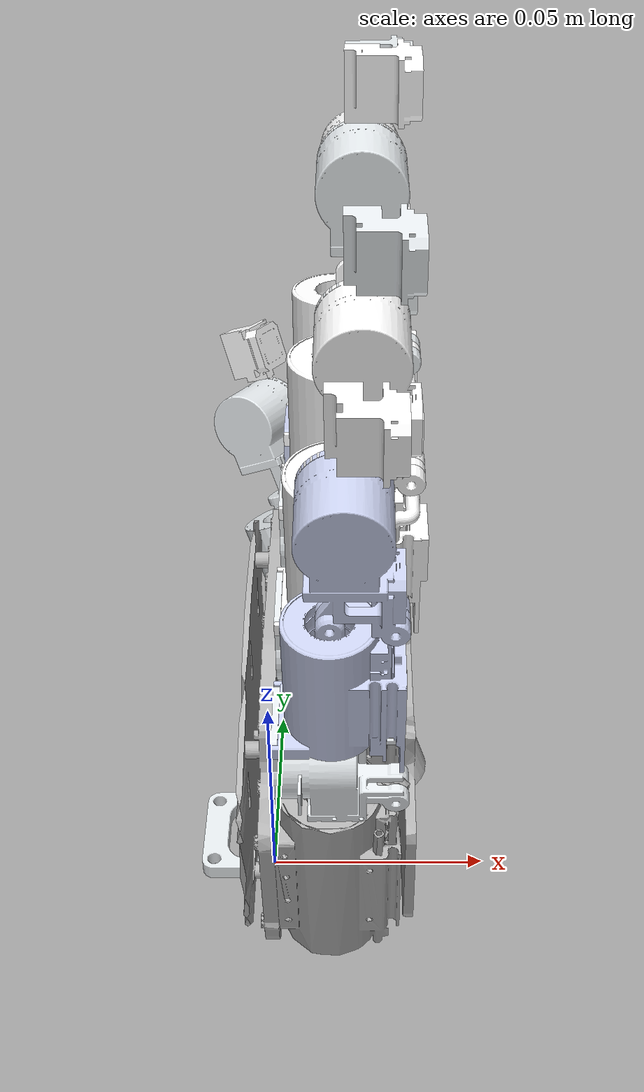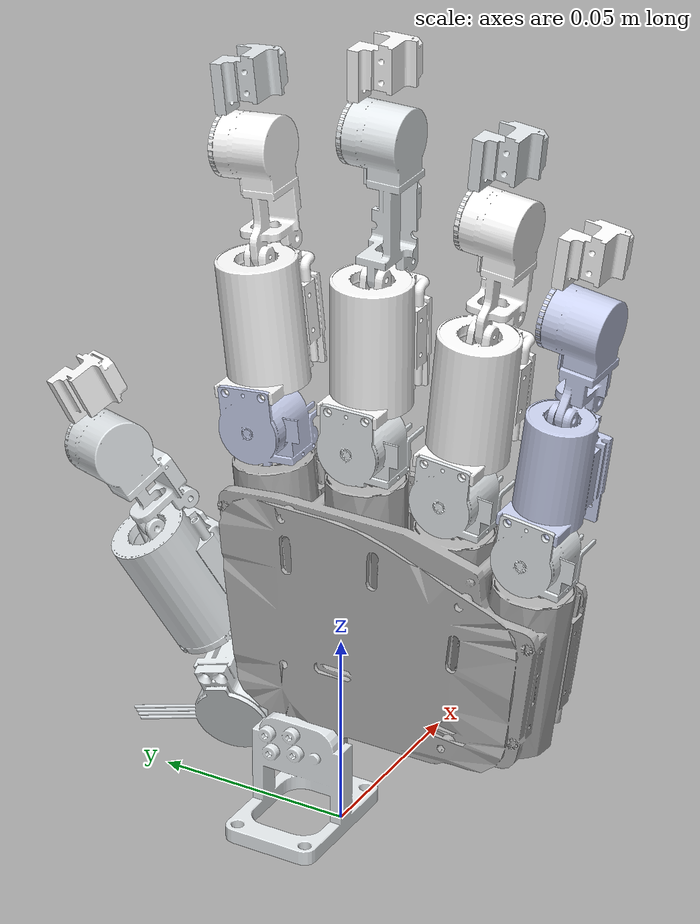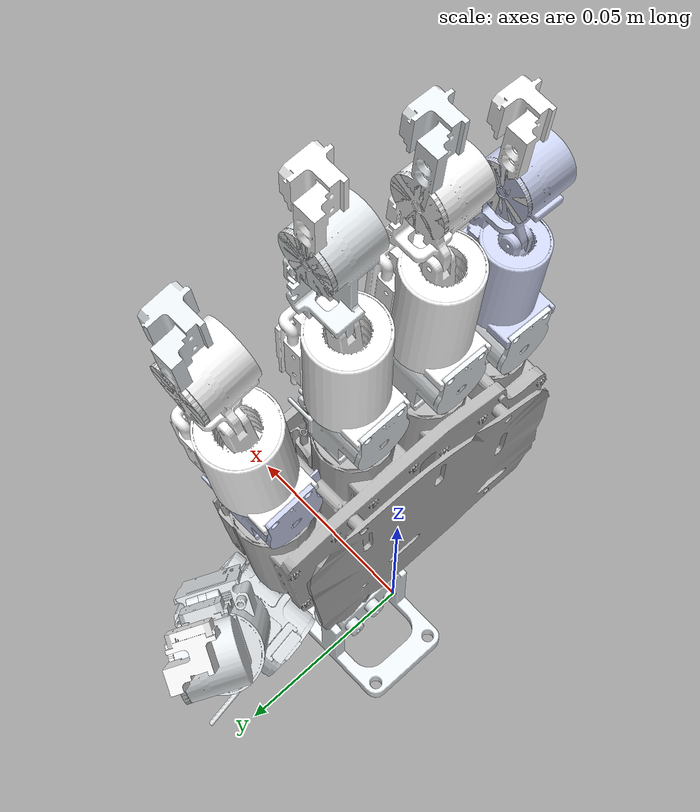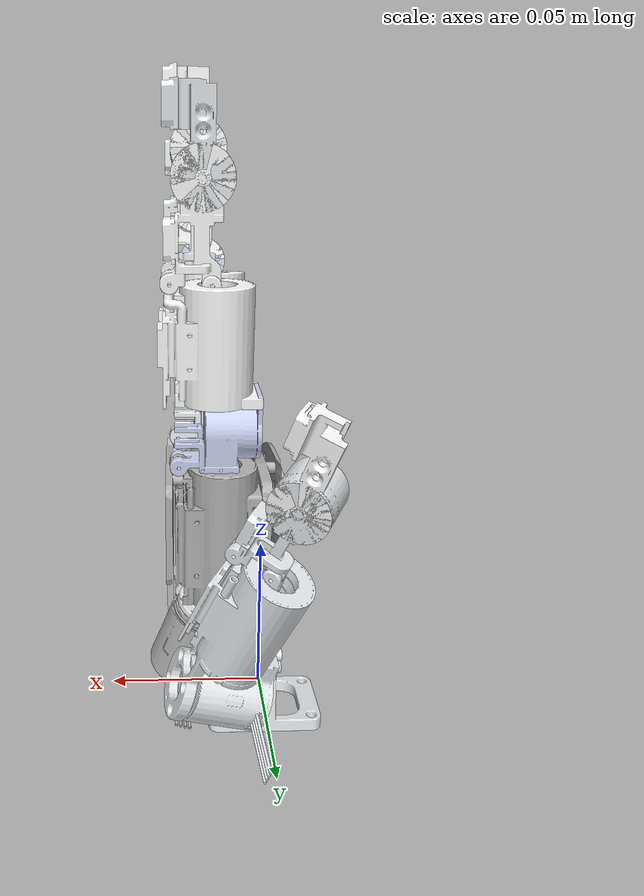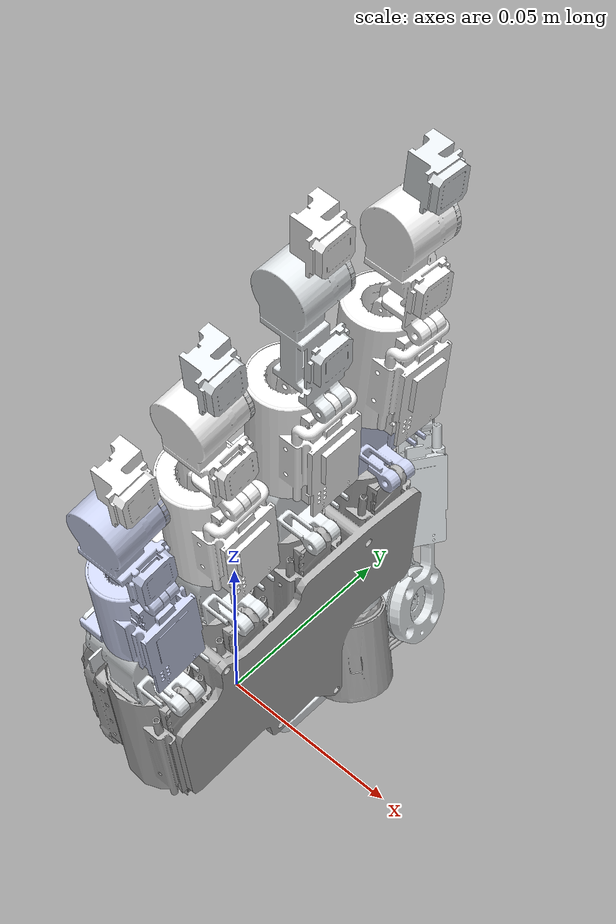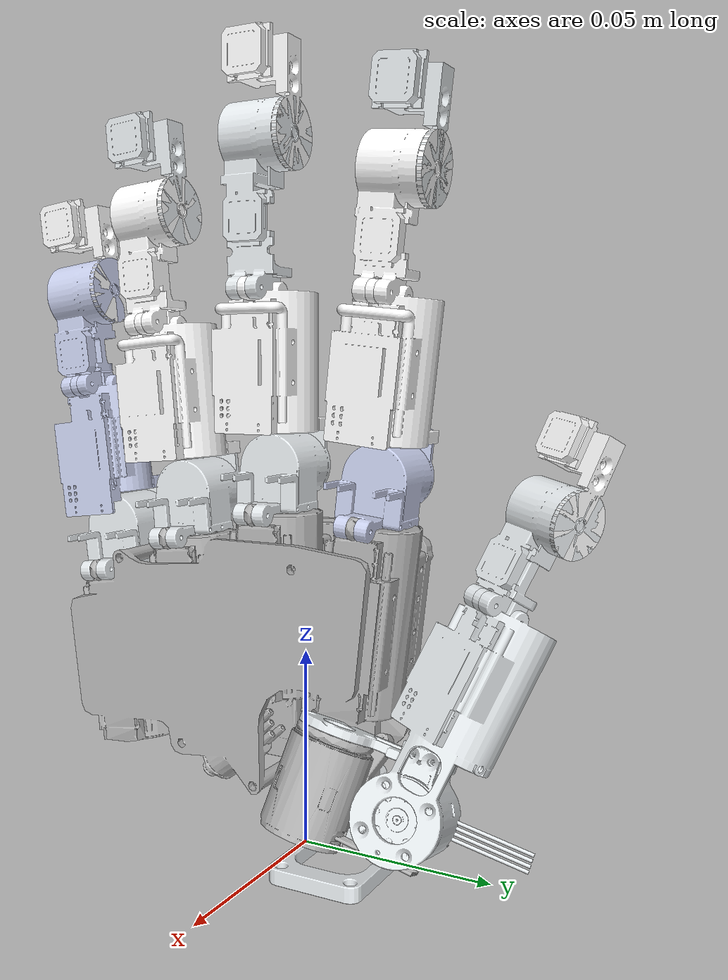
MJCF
<?xml version="1.0" ?>
<mujoco model="rh_daxian_hand">
  <compiler angle="radian" meshdir="assets" autolimits="true"/>
  <option impratio="10" timestep="0.005"/>
  <default>
    <joint damping="0.05" armature="0.001"/>
    <geom friction="1 0.005 0.001" condim="3" solimp="0.99 0.99 0.01" solref="0.01 1"/>
    <position kp="20.0"/>
  </default>
  <asset>
    <mesh name="rh_mesh_right_base_link" file="right_base_link.obj"/>
    <mesh name="rh_mesh_Right_hand_palm_link" file="Right_hand_palm_link.obj"/>
    <mesh name="rh_mesh_right_hand_thumb_rota_block_link" file="right_hand_thumb_rota_block_link.obj"/>
    <mesh name="rh_mesh_right_hand_thumb_rotaback_link2" file="right_hand_thumb_rotaback_link2.obj"/>
    <mesh name="rh_mesh_right_hand_thumb_MCP_link" file="right_hand_thumb_MCP_link.obj"/>
    <mesh name="rh_mesh_right_hand_thumb_PIP_link" file="right_hand_thumb_PIP_link.obj"/>
    <mesh name="rh_mesh_right_hand_index_MCP_link" file="right_hand_index_MCP_link.obj"/>
    <mesh name="rh_mesh_right_hand_index_swing_link" file="right_hand_index_swing_link.obj"/>
    <mesh name="rh_mesh_right_hand_index_PIP_link" file="right_hand_index_PIP_link.obj"/>
    <mesh name="rh_mesh_right_hand_index_DIP_link" file="right_hand_index_DIP_link.obj"/>
    <mesh name="rh_mesh_right_hand_mid_MCP_link" file="right_hand_mid_MCP_link.obj"/>
    <mesh name="rh_mesh_right_hand_mid_swing_link" file="right_hand_mid_swing_link.obj"/>
    <mesh name="rh_mesh_right_hand_mid_PIP_link" file="right_hand_mid_PIP_link.obj"/>
    <mesh name="rh_mesh_right_hand_mid_DIP_link" file="right_hand_mid_DIP_link.obj"/>
    <mesh name="rh_mesh_right_hand_ring_MCP_link" file="right_hand_ring_MCP_link.obj"/>
    <mesh name="rh_mesh_right_hand_ring_swing_link" file="right_hand_ring_swing_link.obj"/>
    <mesh name="rh_mesh_right_hand_ring_PIP_link" file="right_hand_ring_PIP_link.obj"/>
    <mesh name="rh_mesh_right_hand_ring_DIP_link" file="right_hand_ring_DIP_link.obj"/>
    <mesh name="rh_mesh_right_hand_pinky_MCP_link" file="right_hand_pinky_MCP_link.obj"/>
    <mesh name="rh_mesh_right_hand_pinky_swing_link" file="right_hand_pinky_swing_link.obj"/>
    <mesh name="rh_mesh_right_hand_pinky_PIP_link" file="right_hand_pinky_PIP_link.obj"/>
    <mesh name="rh_mesh_right_hand_pinky_DIP_link" file="right_hand_pinky_DIP_link.obj"/>
  </asset>
  <worldbody>
    <body name="rh_forearm">
      <inertial pos="-5.45802e-05 0.0110248 0.00881259" quat="0.687608 -0.175894 -0.203268 0.674491" mass="0.0123877" diaginertia="1.63849e-06 1.52958e-06 1.45785e-06"/>
      <geom type="mesh" contype="0" conaffinity="0" group="1" density="0" rgba="0.898039 0.917647 0.929412 1" mesh="rh_mesh_right_base_link"/>
      <geom type="mesh" rgba="0.898039 0.917647 0.929412 1" mesh="rh_mesh_right_base_link"/>
      <body name="rh_palm_link" pos="0.0237 -0.0065 0.044138">
        <inertial pos="-0.0105104 0.000797446 0.00612202" quat="0.624119 0.781327 0.00160022 0.000238028" mass="0.0907911" diaginertia="3.05138e-05 2.01061e-05 1.2527e-05"/>
        <geom type="mesh" contype="0" conaffinity="0" group="1" density="0" rgba="0.698039 0.698039 0.698039 1" mesh="rh_mesh_Right_hand_palm_link"/>
        <geom type="mesh" rgba="0.698039 0.698039 0.698039 1" mesh="rh_mesh_Right_hand_palm_link"/>
      </body>
      <body name="rh_thumb_rota_block_link" pos="0.023016 0.016557 0.027044" quat="0.978746 -0.104034 -0.175737 -0.0186795">
        <inertial pos="-0.00810919 0.0166552 0.00358448" quat="0.47677 0.682168 -0.240172 0.499655" mass="0.00865513" diaginertia="6.20063e-07 6.16344e-07 3.75156e-07"/>
        <joint name="rh_thumb_rota_block_joint" pos="0 0 0" axis="0 0 -1" range="0 2.09" actuatorfrcrange="-5 5" damping="0.05" armature="0.001"/>
        <geom type="mesh" contype="0" conaffinity="0" group="1" density="0" rgba="0.898039 0.917647 0.929412 1" mesh="rh_mesh_right_hand_thumb_rota_block_link"/>
        <geom type="mesh" rgba="0.898039 0.917647 0.929412 1" mesh="rh_mesh_right_hand_thumb_rota_block_link"/>
        <body name="rh_thumb_rotaback_link2" pos="-0.0091878 0.019669 -0.00042716" quat="0.995865 0 0 0.0908446">
          <inertial pos="0.00710561 0.00429865 0.0251955" quat="0.976944 -0.129091 -0.15724 0.0647466" mass="0.00842254" diaginertia="7.49107e-07 7.07414e-07 4.03675e-07"/>
          <joint name="rh_thumb_rotaback_joint2" pos="0 0 0" axis="-1 0 0" range="0 1.74" actuatorfrcrange="-5 5" damping="0.05" armature="0.001"/>
          <geom type="mesh" contype="0" conaffinity="0" group="1" density="0" rgba="0.898039 0.917647 0.929412 1" mesh="rh_mesh_right_hand_thumb_rotaback_link2"/>
          <geom type="mesh" rgba="0.898039 0.917647 0.929412 1" mesh="rh_mesh_right_hand_thumb_rotaback_link2"/>
          <body name="rh_thumb_MCP_link" pos="0.014465 0.0025468 0.051604" quat="0.958969 -0.0629211 -0.0180995 -0.275848">
            <inertial pos="-0.00539885 -0.00117526 0.00902959" quat="0.695361 -0.0485263 -0.197784 0.689202" mass="0.00258181" diaginertia="1.24324e-07 1.01836e-07 5.89666e-08"/>
            <joint name="rh_thumb_MCP_joint" pos="0 0 0" axis="0 1 0" range="0 1.57" actuatorfrcrange="-5 5" damping="0.05" armature="0.001"/>
            <geom type="mesh" contype="0" conaffinity="0" group="1" density="0" rgba="0.898039 0.917647 0.929412 1" mesh="rh_mesh_right_hand_thumb_MCP_link"/>
            <geom type="mesh" rgba="0.898039 0.917647 0.929412 1" mesh="rh_mesh_right_hand_thumb_MCP_link"/>
            <body name="rh_thumb_PIP_link" pos="-0.0084 0 0.0241">
              <inertial pos="0.00399616 0.00194896 0.014399" quat="0.881149 0.354411 0.146249 0.276731" mass="0.0025207" diaginertia="6.35347e-08 4.8321e-08 3.99297e-08"/>
              <joint name="rh_thumb_PIP_joint" pos="0 0 0" axis="0 1 0" range="0 1.57" actuatorfrcrange="-5 5" damping="0.05" armature="0.001"/>
              <geom type="mesh" contype="0" conaffinity="0" group="1" density="0" rgba="1 1 1 1" mesh="rh_mesh_right_hand_thumb_PIP_link"/>
              <geom type="mesh" rgba="1 1 1 1" mesh="rh_mesh_right_hand_thumb_PIP_link"/>
              <site name="rh_thumb_PIP_site" pos="0 0 0.015" type="sphere" size="0.004" group="3" rgba="0.9 0.1 0.1 0.8"/>
            </body>
          </body>
        </body>
      </body>
      <body name="rh_index_MCP_link" pos="0.0271 0.027373 0.086723" quat="0.998511 -0.0545579 0 0">
        <inertial pos="-0.00838598 9.44004e-06 0.00255611" quat="-0.014783 0.668153 0.017539 0.74367" mass="0.00194176" diaginertia="8.61276e-08 5.63823e-08 5.35714e-08"/>
        <joint name="rh_index_MCP_joint" pos="0 0 0" axis="0 1 0" range="0 1.57" actuatorfrcrange="-5 5" damping="0.05" armature="0.001"/>
        <geom type="mesh" contype="0" conaffinity="0" group="1" density="0" rgba="0.792157 0.819608 0.933333 1" mesh="rh_mesh_right_hand_index_MCP_link"/>
        <geom type="mesh" rgba="0.792157 0.819608 0.933333 1" mesh="rh_mesh_right_hand_index_MCP_link"/>
        <body name="rh_index_swing_link" pos="-0.0134 0 0.01">
          <inertial pos="0.00642896 1.9347e-05 0.0242659" quat="0.999904 0.00536581 0.0127406 0.00048795" mass="0.00586436" diaginertia="3.17977e-07 2.71015e-07 2.02595e-07"/>
          <joint name="rh_index_swing_joint" pos="0 0 0" axis="-1 0 0" range="-0.35 0.35" actuatorfrcrange="-5 5" damping="0.05" armature="0.001"/>
          <geom type="mesh" contype="0" conaffinity="0" group="1" density="0" rgba="1 1 1 1" mesh="rh_mesh_right_hand_index_swing_link"/>
          <geom type="mesh" rgba="1 1 1 1" mesh="rh_mesh_right_hand_index_swing_link"/>
          <body name="rh_index_PIP_link" pos="0.0156 0 0.041">
            <inertial pos="-0.00519847 -0.00133142 0.0123873" quat="0.691075 -0.0281302 -0.1381 0.70891" mass="0.00135423" diaginertia="6.59854e-08 5.65244e-08 3.01418e-08"/>
            <joint name="rh_index_PIP_joint" pos="0 0 0" axis="0 1 0" range="0 1.57" actuatorfrcrange="-5 5" damping="0.05" armature="0.001"/>
            <geom type="mesh" contype="0" conaffinity="0" group="1" density="0" rgba="1 1 1 1" mesh="rh_mesh_right_hand_index_PIP_link"/>
            <geom type="mesh" rgba="1 1 1 1" mesh="rh_mesh_right_hand_index_PIP_link"/>
            <body name="rh_index_DIP_link" pos="-0.0084 0 0.0261">
              <inertial pos="0.0028545 0.00194421 0.0147014" quat="0.886198 0.343294 0.111485 0.29047" mass="0.0025207" diaginertia="6.35344e-08 4.83184e-08 3.99317e-08"/>
              <joint name="rh_index_DIP_joint" pos="0 0 0" axis="0 1 0" range="0 1.57" actuatorfrcrange="-5 5" damping="0.05" armature="0.001"/>
              <geom type="mesh" contype="0" conaffinity="0" group="1" density="0" rgba="0.898039 0.917647 0.929412 1" mesh="rh_mesh_right_hand_index_DIP_link"/>
              <geom type="mesh" rgba="0.898039 0.917647 0.929412 1" mesh="rh_mesh_right_hand_index_DIP_link"/>
              <site name="rh_index_DIP_site" pos="0 0 0.015" type="sphere" size="0.004" group="3" rgba="0.9 0.1 0.1 0.8"/>
            </body>
          </body>
        </body>
      </body>
      <body name="rh_mid_MCP_link" pos="0.0272 0.0015 0.088138">
        <inertial pos="-0.00838598 9.43463e-06 0.0025561" quat="-0.0147829 0.668153 0.0175389 0.74367" mass="0.00194176" diaginertia="8.61276e-08 5.63823e-08 5.35714e-08"/>
        <joint name="rh_mid_MCP_joint" pos="0 0 0" axis="0 1 0" range="0 1.57" actuatorfrcrange="-5 5" damping="0.05" armature="0.001"/>
        <geom type="mesh" contype="0" conaffinity="0" group="1" density="0" rgba="0.898039 0.917647 0.929412 1" mesh="rh_mesh_right_hand_mid_MCP_link"/>
        <geom type="mesh" rgba="0.898039 0.917647 0.929412 1" mesh="rh_mesh_right_hand_mid_MCP_link"/>
        <body name="rh_mid_swing_link" pos="-0.014875 0 0.01">
          <inertial pos="0.00790395 2.23879e-05 0.0242658" quat="0.999908 0.0046668 0.0127414 0.000400221" mass="0.00586436" diaginertia="3.17977e-07 2.71013e-07 2.02597e-07"/>
          <joint name="rh_mid_swing_joint" pos="0 0 0" axis="-1 0 0" range="-0.35 0.35" actuatorfrcrange="-5 5" damping="0.05" armature="0.001"/>
          <geom type="mesh" contype="0" conaffinity="0" group="1" density="0" rgba="1 1 1 1" mesh="rh_mesh_right_hand_mid_swing_link"/>
          <geom type="mesh" rgba="1 1 1 1" mesh="rh_mesh_right_hand_mid_swing_link"/>
          <body name="rh_mid_PIP_link" pos="0.017075 0 0.041">
            <inertial pos="-0.00556149 -0.00148976 0.0136655" quat="0.658918 -0.00175397 -0.0953504 0.746145" mass="0.00325302" diaginertia="2.93603e-07 2.62907e-07 7.45459e-08"/>
            <joint name="rh_mid_PIP_joint" pos="0 0 0" axis="0 1 0" range="0 1.57" actuatorfrcrange="-5 5" damping="0.05" armature="0.001"/>
            <geom type="mesh" contype="0" conaffinity="0" group="1" density="0" rgba="0.898039 0.917647 0.929412 1" mesh="rh_mesh_right_hand_mid_PIP_link"/>
            <geom type="mesh" rgba="0.898039 0.917647 0.929412 1" mesh="rh_mesh_right_hand_mid_PIP_link"/>
            <body name="rh_mid_DIP_link" pos="-0.0084 0 0.0341">
              <inertial pos="0.0028545 0.00194896 0.0147062" quat="0.886198 0.343294 0.111485 0.29047" mass="0.0025207" diaginertia="6.35344e-08 4.83184e-08 3.99317e-08"/>
              <joint name="rh_mid_DIP_joint" pos="0 0 0" axis="0 1 0" range="0 1.57" actuatorfrcrange="-5 5" damping="0.05" armature="0.001"/>
              <geom type="mesh" contype="0" conaffinity="0" group="1" density="0" rgba="1 1 1 1" mesh="rh_mesh_right_hand_mid_DIP_link"/>
              <geom type="mesh" rgba="1 1 1 1" mesh="rh_mesh_right_hand_mid_DIP_link"/>
              <site name="rh_mid_DIP_site" pos="0 0 0.015" type="sphere" size="0.004" group="3" rgba="0.9 0.1 0.1 0.8"/>
            </body>
          </body>
        </body>
      </body>
      <body name="rh_ring_MCP_link" pos="0.0271 -0.022574 0.080986" quat="0.999048 0.0436192 0 0">
        <inertial pos="-0.00838598 9.4347e-06 0.0025561" quat="-0.0147829 0.668153 0.0175388 0.74367" mass="0.00194176" diaginertia="8.61276e-08 5.63823e-08 5.35714e-08"/>
        <joint name="rh_ring_MCP_joint" pos="0 0 0" axis="0 1 0" range="0 1.57" actuatorfrcrange="-5 5" damping="0.05" armature="0.001"/>
        <geom type="mesh" contype="0" conaffinity="0" group="1" density="0" rgba="0.898039 0.917647 0.929412 1" mesh="rh_mesh_right_hand_ring_MCP_link"/>
        <geom type="mesh" rgba="0.898039 0.917647 0.929412 1" mesh="rh_mesh_right_hand_ring_MCP_link"/>
        <body name="rh_ring_swing_link" pos="-0.0149 0 0.01">
          <inertial pos="0.00792895 1.9342e-05 0.0242658" quat="0.999904 0.00536581 0.0127406 0.000488048" mass="0.00586436" diaginertia="3.17977e-07 2.71015e-07 2.02595e-07"/>
          <joint name="rh_ring_swing_joint" pos="0 0 0" axis="-1 0 0" range="-0.35 0.35" actuatorfrcrange="-5 5" damping="0.05" armature="0.001"/>
          <geom type="mesh" contype="0" conaffinity="0" group="1" density="0" rgba="1 1 1 1" mesh="rh_mesh_right_hand_ring_swing_link"/>
          <geom type="mesh" rgba="1 1 1 1" mesh="rh_mesh_right_hand_ring_swing_link"/>
          <body name="rh_ring_PIP_link" pos="0.0171 0 0.041">
            <inertial pos="-0.00519847 -0.00133143 0.0123164" quat="0.69105 -0.02807 -0.138042 0.708948" mass="0.00135423" diaginertia="6.59852e-08 5.65217e-08 3.01441e-08"/>
            <joint name="rh_ring_PIP_joint" pos="0 0 0" axis="0 1 0" range="0 1.57" actuatorfrcrange="-5 5" damping="0.05" armature="0.001"/>
            <geom type="mesh" contype="0" conaffinity="0" group="1" density="0" rgba="1 1 1 1" mesh="rh_mesh_right_hand_ring_PIP_link"/>
            <geom type="mesh" rgba="1 1 1 1" mesh="rh_mesh_right_hand_ring_PIP_link"/>
            <body name="rh_ring_DIP_link" pos="-0.0084 0 0.0261">
              <inertial pos="0.0028545 0.00194421 0.0147014" quat="0.886198 0.343294 0.111484 0.290471" mass="0.0025207" diaginertia="6.35344e-08 4.83184e-08 3.99317e-08"/>
              <joint name="rh_ring_DIP_joint" pos="0 0 0" axis="0 1 0" range="0 1.57" actuatorfrcrange="-5 5" damping="0.05" armature="0.001"/>
              <geom type="mesh" contype="0" conaffinity="0" group="1" density="0" rgba="0.898039 0.917647 0.929412 1" mesh="rh_mesh_right_hand_ring_DIP_link"/>
              <geom type="mesh" rgba="0.898039 0.917647 0.929412 1" mesh="rh_mesh_right_hand_ring_DIP_link"/>
              <site name="rh_ring_DIP_site" pos="0 0 0.015" type="sphere" size="0.004" group="3" rgba="0.9 0.1 0.1 0.8"/>
            </body>
          </body>
        </body>
      </body>
      <body name="rh_pinky_MCP_link" pos="0.0271 -0.043922 0.071353" quat="0.998156 0.0607076 0 0">
        <inertial pos="-0.00838598 9.43473e-06 0.0025561" quat="-0.0147829 0.668153 0.0175388 0.74367" mass="0.00194176" diaginertia="8.61276e-08 5.63823e-08 5.35714e-08"/>
        <joint name="rh_pinky_MCP_joint" pos="0 0 0" axis="0 1 0" range="0 1.57" actuatorfrcrange="-5 5" damping="0.05" armature="0.001"/>
        <geom type="mesh" contype="0" conaffinity="0" group="1" density="0" rgba="0.898039 0.917647 0.929412 1" mesh="rh_mesh_right_hand_pinky_MCP_link"/>
        <geom type="mesh" rgba="0.898039 0.917647 0.929412 1" mesh="rh_mesh_right_hand_pinky_MCP_link"/>
        <body name="rh_pinky_swing_link" pos="-0.014875 0 0.01">
          <inertial pos="0.00612313 1.92495e-05 0.0209296" quat="0.99998 0.00600196 0.00173741 0.000541512" mass="0.00413548" diaginertia="1.9242e-07 1.63413e-07 1.07365e-07"/>
          <joint name="rh_pinky_swing_joint" pos="0 0 0" axis="-1 0 0" range="-0.35 0.35" actuatorfrcrange="-5 5" damping="0.05" armature="0.001"/>
          <geom type="mesh" contype="0" conaffinity="0" group="1" density="0" rgba="0.792157 0.819608 0.933333 1" mesh="rh_mesh_right_hand_pinky_swing_link"/>
          <geom type="mesh" rgba="0.792157 0.819608 0.933333 1" mesh="rh_mesh_right_hand_pinky_swing_link"/>
          <body name="rh_pinky_PIP_link" pos="0.014075 0 0.036">
            <inertial pos="-0.0052982 -0.00158308 0.0107408" quat="0.660602 -0.0950061 -0.209549 0.71461" mass="0.00127335" diaginertia="5.49516e-08 4.56626e-08 2.78918e-08"/>
            <joint name="rh_pinky_PIP_joint" pos="0 0 0" axis="0 1 0" range="0 1.57" actuatorfrcrange="-5 5" damping="0.05" armature="0.001"/>
            <geom type="mesh" contype="0" conaffinity="0" group="1" density="0" rgba="0.792157 0.819608 0.933333 1" mesh="rh_mesh_right_hand_pinky_PIP_link"/>
            <geom type="mesh" rgba="0.792157 0.819608 0.933333 1" mesh="rh_mesh_right_hand_pinky_PIP_link"/>
            <body name="rh_pinky_DIP_link" pos="-0.0084 0 0.023">
              <inertial pos="0.0028545 0.00194908 0.014706" quat="0.886198 0.343294 0.111484 0.290471" mass="0.0025207" diaginertia="6.35344e-08 4.83184e-08 3.99317e-08"/>
              <joint name="rh_pinky_DIP_joint" pos="0 0 0" axis="0 1 0" range="0 1.57" actuatorfrcrange="-5 5" damping="0.05" armature="0.001"/>
              <geom type="mesh" contype="0" conaffinity="0" group="1" density="0" rgba="1 1 1 1" mesh="rh_mesh_right_hand_pinky_DIP_link"/>
              <geom type="mesh" rgba="1 1 1 1" mesh="rh_mesh_right_hand_pinky_DIP_link"/>
              <site name="rh_pinky_DIP_site" pos="0 0 0.015" type="sphere" size="0.004" group="3" rgba="0.9 0.1 0.1 0.8"/>
            </body>
          </body>
        </body>
      </body>
    </body>
  </worldbody>
  <actuator>
    <position name="rh_A_thumb_rota_block_joint" joint="rh_thumb_rota_block_joint" ctrlrange="0 2.09" kp="20.0"/>
    <position name="rh_A_thumb_rotaback_joint2" joint="rh_thumb_rotaback_joint2" ctrlrange="0 1.74" kp="20.0"/>
    <position name="rh_A_thumb_MCP_joint" joint="rh_thumb_MCP_joint" ctrlrange="0 1.57" kp="20.0"/>
    <position name="rh_A_thumb_PIP_joint" joint="rh_thumb_PIP_joint" ctrlrange="0 1.57" kp="20.0"/>
    <position name="rh_A_index_MCP_joint" joint="rh_index_MCP_joint" ctrlrange="0 1.57" kp="20.0"/>
    <position name="rh_A_index_swing_joint" joint="rh_index_swing_joint" ctrlrange="-0.35 0.35" kp="20.0"/>
    <position name="rh_A_index_PIP_joint" joint="rh_index_PIP_joint" ctrlrange="0 1.57" kp="20.0"/>
    <position name="rh_A_index_DIP_joint" joint="rh_index_DIP_joint" ctrlrange="0 1.57" kp="20.0"/>
    <position name="rh_A_mid_MCP_joint" joint="rh_mid_MCP_joint" ctrlrange="0 1.57" kp="20.0"/>
    <position name="rh_A_mid_swing_joint" joint="rh_mid_swing_joint" ctrlrange="-0.35 0.35" kp="20.0"/>
    <position name="rh_A_mid_PIP_joint" joint="rh_mid_PIP_joint" ctrlrange="0 1.57" kp="20.0"/>
    <position name="rh_A_mid_DIP_joint" joint="rh_mid_DIP_joint" ctrlrange="0 1.57" kp="20.0"/>
    <position name="rh_A_ring_MCP_joint" joint="rh_ring_MCP_joint" ctrlrange="0 1.57" kp="20.0"/>
    <position name="rh_A_ring_swing_joint" joint="rh_ring_swing_joint" ctrlrange="-0.35 0.35" kp="20.0"/>
    <position name="rh_A_ring_PIP_joint" joint="rh_ring_PIP_joint" ctrlrange="0 1.57" kp="20.0"/>
    <position name="rh_A_ring_DIP_joint" joint="rh_ring_DIP_joint" ctrlrange="0 1.57" kp="20.0"/>
    <position name="rh_A_pinky_MCP_joint" joint="rh_pinky_MCP_joint" ctrlrange="0 1.57" kp="20.0"/>
    <position name="rh_A_pinky_swing_joint" joint="rh_pinky_swing_joint" ctrlrange="-0.35 0.35" kp="20.0"/>
    <position name="rh_A_pinky_PIP_joint" joint="rh_pinky_PIP_joint" ctrlrange="0 1.57" kp="20.0"/>
    <position name="rh_A_pinky_DIP_joint" joint="rh_pinky_DIP_joint" ctrlrange="0 1.57" kp="20.0"/>
  </actuator>
</mujoco>
